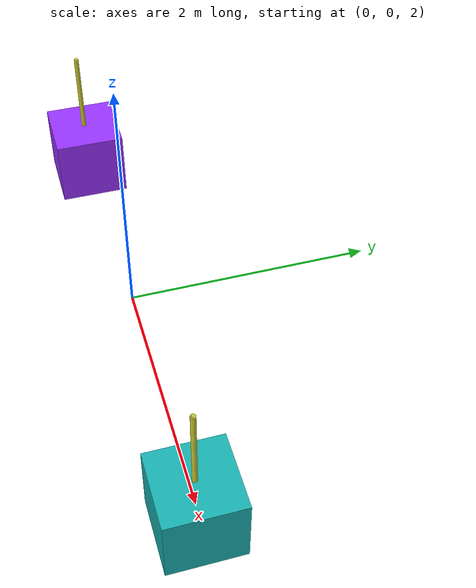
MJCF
<mujoco>
  <option gravity="0 0 -9.81" />
  <worldbody>
    <light diffuse="0.5 0.5 0.5" pos="0 0 5" dir="0 0 -1" />
    <body name="object_5" pos="0 0 -10">
      <geom type="plane" size="50 50 0.1" rgba="0.9 0.9 0.9 1" />
    </body>
    <body name="object_3" pos="-2 0 3">
      <geom type="capsule" fromto="0 0 0 0 0 -1" size="0.02" rgba="0.8 0.8 0.2 1" />
      <site name="object_3_site" pos="0 0 -1" size="0.01" />
    </body>
    <body name="object_4" pos="2 0 3">
      <geom type="capsule" fromto="0 0 0 0 0 -1" size="0.02" rgba="0.8 0.8 0.2 1" />
      <site name="object_4_site" pos="0 0 -1" size="0.01" />
    </body>
    <body name="object_1" pos="-2 0 2">
      <geom type="box" size="0.3 0.3 0.3" mass="2" rgba="0.6 0.2 1 1" />
      <joint type="slide" axis="0 0 1" limited="true" range="0 5" name="object_1_joint" />
      <site name="object_1_site" pos="0 0 0" size="0.01" />
    </body>
    <body name="object_2" pos="2 0 2">
      <geom type="box" size="0.3 0.3 0.3" mass="4" rgba="0.1 0.7 0.7 1" />
      <joint type="slide" axis="0 0 1" limited="true" range="0 5" name="object_2_joint" />
      <site name="object_2_site" pos="0 0 0" size="0.01" />
    </body>
  </worldbody>
  <tendon>
    <spatial name="spring1" width="0.01" stiffness="50">
      <site site="object_3_site" />
      <site site="object_1_site" />
    </spatial>
    <spatial name="spring2" width="0.01" stiffness="50">
      <site site="object_4_site" />
      <site site="object_2_site" />
    </spatial>
  </tendon>
</mujoco>
